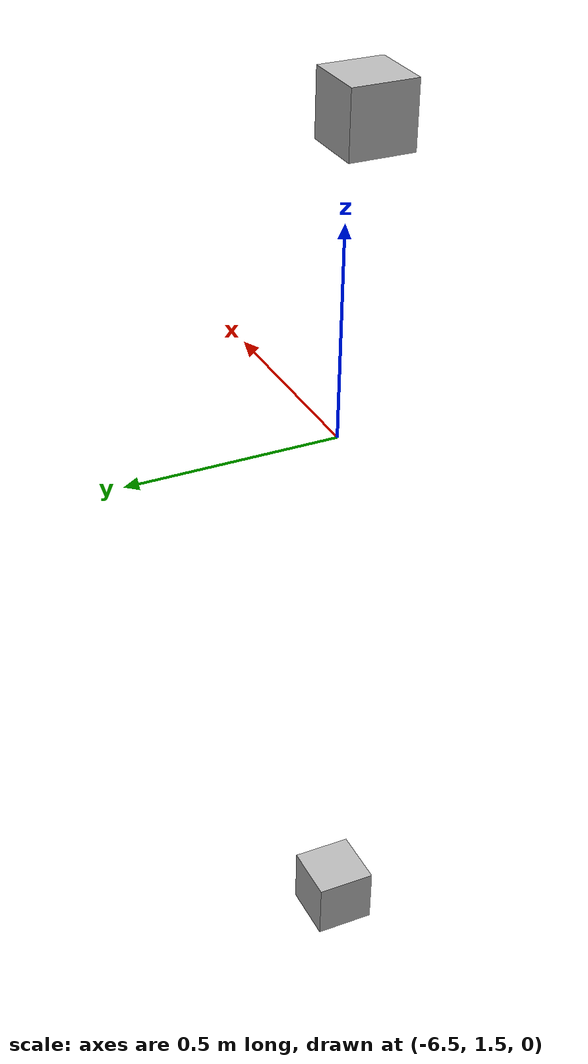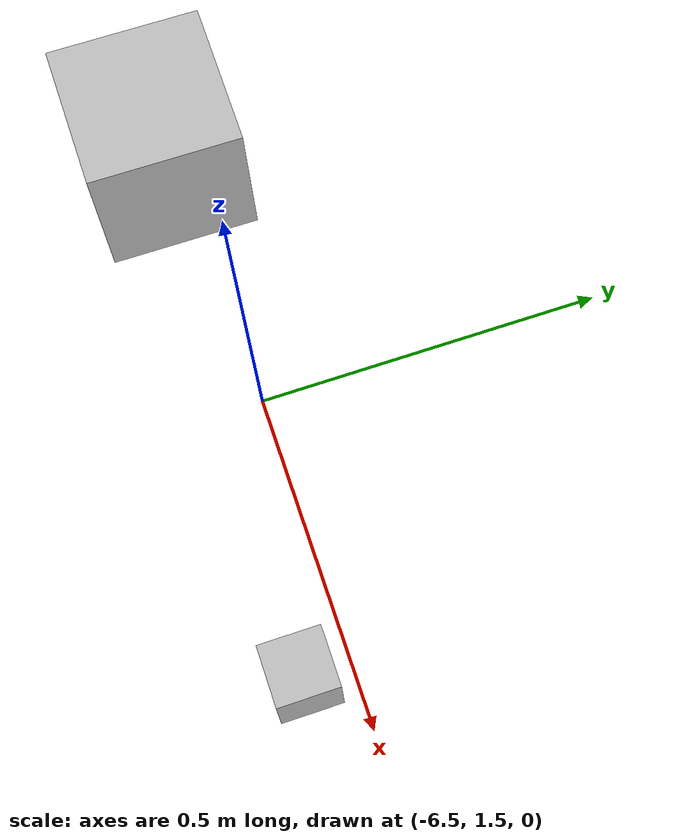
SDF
<sdf version="1.7">
 <world name="default">
  <model name="orthogonal_747_2.000.15_TS">
   <static>1</static>
   <link name="u_link_0_3_0">
    <inertial>
     <mass>1</mass>
     <inertia>
      <ixx>0.166667</ixx>
      <ixy>0</ixy>
      <ixz>0</ixz>
      <iyy>0.166667</iyy>
      <iyz>0</iyz>
      <izz>0.166667</izz>
     </inertia>
    </inertial>
    <pose>0 6.45 1.075 0 -0 0</pose>
    <visual name="visual_0">
     <laser_retro>498</laser_retro>
     <geometry><box><size>0.15 1e-06 0.15</size></box></geometry>
     <material>
      <script><name>Gazebo/Grey</name><uri>file://media/materials/scripts/gazebo.material</uri></script>
      <shader type="pixel"><normal_map>__default__</normal_map></shader>
      <ambient>0.678 0.498 0.659 1</ambient>
      <diffuse>0.7 0.7 0.7 1</diffuse>
      <specular>0.01 0.01 0.01 1</specular>
      <emissive>0 0 0 1</emissive>
     </material>
     <pose>0 -0.075 0 0 -0 0</pose>
     <transparency>1</transparency>
    </visual>
    <visual name="visual_1">
     <laser_retro>499</laser_retro>
     <geometry><box><size>0.15 1e-06 0.15</size></box></geometry>
     <material>
      <script><name>Gazebo/Grey</name><uri>file://media/materials/scripts/gazebo.material</uri></script>
      <shader type="pixel"><normal_map>__default__</normal_map></shader>
      <ambient>0.447 0.624 0.812 1</ambient>
      <diffuse>0.7 0.7 0.7 1</diffuse>
      <specular>0.01 0.01 0.01 1</specular>
      <emissive>0 0 0 1</emissive>
     </material>
     <pose>0 0.075 0 0 -0 0</pose>
     <transparency>1</transparency>
    </visual>
    <visual name="visual_2">
     <laser_retro>500</laser_retro>
     <geometry><box><size>0.15 0.15 1e-06</size></box></geometry>
     <material>
      <script><name>Gazebo/Grey</name><uri>file://media/materials/scripts/gazebo.material</uri></script>
      <shader type="pixel"><normal_map>__default__</normal_map></shader>
      <ambient>0.988 0.686 0.243 1</ambient>
      <diffuse>0.7 0.7 0.7 1</diffuse>
      <specular>0.01 0.01 0.01 1</specular>
      <emissive>0 0 0 1</emissive>
     </material>
     <pose>0 0 -0.075 0 -0 0</pose>
     <transparency>1</transparency>
    </visual>
    <visual name="visual_3">
     <laser_retro>501</laser_retro>
     <geometry><box><size>1e-06 0.15 0.15</size></box></geometry>
     <material>
      <script><name>Gazebo/Grey</name><uri>file://media/materials/scripts/gazebo.material</uri></script>
      <shader type="pixel"><normal_map>__default__</normal_map></shader>
      <ambient>0.988 0.914 0.31 1</ambient>
      <diffuse>0.7 0.7 0.7 1</diffuse>
      <specular>0.01 0.01 0.01 1</specular>
      <emissive>0 0 0 1</emissive>
     </material>
     <pose>0.075 0 0 0 -0 0</pose>
     <transparency>1</transparency>
    </visual>
    <visual name="visual_4">
     <laser_retro>502</laser_retro>
     <geometry><box><size>0.15 0.15 1e-06</size></box></geometry>
     <material>
      <script><name>Gazebo/Grey</name><uri>file://media/materials/scripts/gazebo.material</uri></script>
      <shader type="pixel"><normal_map>__default__</normal_map></shader>
      <ambient>0.937 0.161 0.161 1</ambient>
      <diffuse>0.7 0.7 0.7 1</diffuse>
      <specular>0.01 0.01 0.01 1</specular>
      <emissive>0 0 0 1</emissive>
     </material>
     <pose>0 0 0.075 0 -0 0</pose>
     <transparency>1</transparency>
    </visual>
    <visual name="visual_5">
     <laser_retro>503</laser_retro>
     <geometry><box><size>1e-06 0.15 0.15</size></box></geometry>
     <material>
      <script><name>Gazebo/Grey</name><uri>file://media/materials/scripts/gazebo.material</uri></script>
      <shader type="pixel"><normal_map>__default__</normal_map></shader>
      <ambient>0.541 0.886 0.204 1</ambient>
      <diffuse>0.7 0.7 0.7 1</diffuse>
      <specular>0.01 0.01 0.01 1</specular>
      <emissive>0 0 0 1</emissive>
     </material>
     <pose>-0.075 0 0 0 -0 0</pose>
     <transparency>1</transparency>
    </visual>
    <visual name="visual_texture">
     <geometry><box><size>0.149985 0.149985 0.149985</size></box></geometry>
     <material>
      <script>
       <uri>model://BASE_MODELS/simple_block_v2_textured/materials/scripts</uri>
       <uri>model://BASE_MODELS/simple_block_v2_textured/materials/textures</uri>
       <name>metal</name>
      </script>
     </material>
     <laser_retro>504</laser_retro>
    </visual>
    <collision name="collision">
     <geometry><box><size>0.15 0.15 0.15</size></box></geometry>
     <surface>
      <friction>
       <ode><mu>1</mu><mu2>1</mu2><fdir1>0 0 0</fdir1><slip1>0</slip1><slip2>0</slip2></ode>
       <torsional>
        <coefficient>1</coefficient>
        <patch_radius>0</patch_radius>
        <surface_radius>0</surface_radius>
        <use_patch_radius>1</use_patch_radius>
        <ode><slip>0</slip></ode>
       </torsional>
      </friction>
      <bounce><restitution_coefficient>0</restitution_coefficient><threshold>1e+06</threshold></bounce>
      <contact>
       <collide_without_contact>0</collide_without_contact>
       <collide_without_contact_bitmask>1</collide_without_contact_bitmask>
       <collide_bitmask>1</collide_bitmask>
       <ode>
        <soft_cfm>0</soft_cfm>
        <soft_erp>0.2</soft_erp>
        <kp>1e+13</kp>
        <kd>1</kd>
        <max_vel>0.01</max_vel>
        <min_depth>0</min_depth>
       </ode>
       <bullet>
        <split_impulse>1</split_impulse>
        <split_impulse_penetration_threshold>-0.01</split_impulse_penetration_threshold>
        <soft_cfm>0</soft_cfm>
        <soft_erp>0.2</soft_erp>
        <kp>1e+13</kp>
        <kd>1</kd>
       </bullet>
      </contact>
     </surface>
    </collision>
   </link>
   <link name="u_link_1_3_0">
    <inertial>
     <mass>1</mass>
     <inertia>
      <ixx>0.166667</ixx>
      <ixy>0</ixy>
      <ixz>0</ixz>
      <iyy>0.166667</iyy>
      <iyz>0</iyz>
      <izz>0.166667</izz>
     </inertia>
    </inertial>
    <pose>0 6.45 3.225 0 -0 0</pose>
    <visual name="visual_0">
     <laser_retro>1331</laser_retro>
     <geometry><box><size>0.15 1e-06 0.15</size></box></geometry>
     <material>
      <script><name>Gazebo/Grey</name><uri>file://media/materials/scripts/gazebo.material</uri></script>
      <shader type="pixel"><normal_map>__default__</normal_map></shader>
      <ambient>0.678 0.498 0.659 1</ambient>
      <diffuse>0.7 0.7 0.7 1</diffuse>
      <specular>0.01 0.01 0.01 1</specular>
      <emissive>0 0 0 1</emissive>
     </material>
     <pose>0 -0.075 0 0 -0 0</pose>
     <transparency>1</transparency>
    </visual>
    <visual name="visual_1">
     <laser_retro>1332</laser_retro>
     <geometry><box><size>0.15 1e-06 0.15</size></box></geometry>
     <material>
      <script><name>Gazebo/Grey</name><uri>file://media/materials/scripts/gazebo.material</uri></script>
      <shader type="pixel"><normal_map>__default__</normal_map></shader>
      <ambient>0.447 0.624 0.812 1</ambient>
      <diffuse>0.7 0.7 0.7 1</diffuse>
      <specular>0.01 0.01 0.01 1</specular>
      <emissive>0 0 0 1</emissive>
     </material>
     <pose>0 0.075 0 0 -0 0</pose>
     <transparency>1</transparency>
    </visual>
    <visual name="visual_2">
     <laser_retro>1333</laser_retro>
     <geometry><box><size>0.15 0.15 1e-06</size></box></geometry>
     <material>
      <script><name>Gazebo/Grey</name><uri>file://media/materials/scripts/gazebo.material</uri></script>
      <shader type="pixel"><normal_map>__default__</normal_map></shader>
      <ambient>0.988 0.686 0.243 1</ambient>
      <diffuse>0.7 0.7 0.7 1</diffuse>
      <specular>0.01 0.01 0.01 1</specular>
      <emissive>0 0 0 1</emissive>
     </material>
     <pose>0 0 -0.075 0 -0 0</pose>
     <transparency>1</transparency>
    </visual>
    <visual name="visual_3">
     <laser_retro>1334</laser_retro>
     <geometry><box><size>1e-06 0.15 0.15</size></box></geometry>
     <material>
      <script><name>Gazebo/Grey</name><uri>file://media/materials/scripts/gazebo.material</uri></script>
      <shader type="pixel"><normal_map>__default__</normal_map></shader>
      <ambient>0.988 0.914 0.31 1</ambient>
      <diffuse>0.7 0.7 0.7 1</diffuse>
      <specular>0.01 0.01 0.01 1</specular>
      <emissive>0 0 0 1</emissive>
     </material>
     <pose>0.075 0 0 0 -0 0</pose>
     <transparency>1</transparency>
    </visual>
    <visual name="visual_4">
     <laser_retro>1335</laser_retro>
     <geometry><box><size>0.15 0.15 1e-06</size></box></geometry>
     <material>
      <script><name>Gazebo/Grey</name><uri>file://media/materials/scripts/gazebo.material</uri></script>
      <shader type="pixel"><normal_map>__default__</normal_map></shader>
      <ambient>0.937 0.161 0.161 1</ambient>
      <diffuse>0.7 0.7 0.7 1</diffuse>
      <specular>0.01 0.01 0.01 1</specular>
      <emissive>0 0 0 1</emissive>
     </material>
     <pose>0 0 0.075 0 -0 0</pose>
     <transparency>1</transparency>
    </visual>
    <visual name="visual_5">
     <laser_retro>1336</laser_retro>
     <geometry><box><size>1e-06 0.15 0.15</size></box></geometry>
     <material>
      <script><name>Gazebo/Grey</name><uri>file://media/materials/scripts/gazebo.material</uri></script>
      <shader type="pixel"><normal_map>__default__</normal_map></shader>
      <ambient>0.541 0.886 0.204 1</ambient>
      <diffuse>0.7 0.7 0.7 1</diffuse>
      <specular>0.01 0.01 0.01 1</specular>
      <emissive>0 0 0 1</emissive>
     </material>
     <pose>-0.075 0 0 0 -0 0</pose>
     <transparency>1</transparency>
    </visual>
    <visual name="visual_texture">
     <geometry><box><size>0.149985 0.149985 0.149985</size></box></geometry>
     <material>
      <script>
       <uri>model://BASE_MODELS/simple_block_v2_textured/materials/scripts</uri>
       <uri>model://BASE_MODELS/simple_block_v2_textured/materials/textures</uri>
       <name>metal</name>
      </script>
     </material>
     <laser_retro>1337</laser_retro>
    </visual>
    <collision name="collision">
     <geometry><box><size>0.15 0.15 0.15</size></box></geometry>
     <surface>
      <friction>
       <ode><mu>1</mu><mu2>1</mu2><fdir1>0 0 0</fdir1><slip1>0</slip1><slip2>0</slip2></ode>
       <torsional>
        <coefficient>1</coefficient>
        <patch_radius>0</patch_radius>
        <surface_radius>0</surface_radius>
        <use_patch_radius>1</use_patch_radius>
        <ode><slip>0</slip></ode>
       </torsional>
      </friction>
      <bounce><restitution_coefficient>0</restitution_coefficient><threshold>1e+06</threshold></bounce>
      <contact>
       <collide_without_contact>0</collide_without_contact>
       <collide_without_contact_bitmask>1</collide_without_contact_bitmask>
       <collide_bitmask>1</collide_bitmask>
       <ode>
        <soft_cfm>0</soft_cfm>
        <soft_erp>0.2</soft_erp>
        <kp>1e+13</kp>
        <kd>1</kd>
        <max_vel>0.01</max_vel>
        <min_depth>0</min_depth>
       </ode>
       <bullet>
        <split_impulse>1</split_impulse>
        <split_impulse_penetration_threshold>-0.01</split_impulse_penetration_threshold>
        <soft_cfm>0</soft_cfm>
        <soft_erp>0.2</soft_erp>
        <kp>1e+13</kp>
        <kd>1</kd>
       </bullet>
      </contact>
     </surface>
    </collision>
   </link>
   <pose>-6.47624 -5 -2.5 0 -0 0</pose>
  </model>
 </world>
</sdf>
